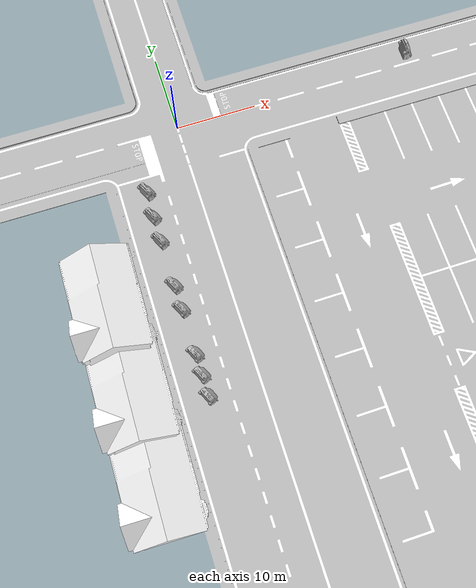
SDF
<sdf version="1.5">
 <world name="default">
  <scene><grid>false</grid></scene>
  <include><uri>model://sun</uri><pose>1.5 -30 100 0 0 0</pose></include>
  <include><uri>model://house_3</uri><name>house3_2</name><pose>-14 -20 0 0 0 1.55</pose></include>
  <include><uri>model://house_3</uri><name>house3_3</name><pose>-14 -30 0 0 0 1.55</pose></include>
  <include><uri>model://house_3</uri><name>house3_4</name><pose>-14 -40 0 0 0 1.55</pose></include>
  <include>
   <uri>model://opel</uri>
   <name>car1</name>
   <pose>30 1.5 0 0 0 -1.57</pose>
   <static>true</static>
  </include>
  <include>
   <uri>model://opel</uri>
   <name>car2</name>
   <pose>-6.5 -7.7 0 0 0 -1.14</pose>
   <static>true</static>
  </include>
  <include>
   <uri>model://opel</uri>
   <name>car3</name>
   <pose>-6.7 -11 0 0 0 -1.14</pose>
   <static>true</static>
  </include>
  <include>
   <uri>model://opel</uri>
   <name>car4</name>
   <pose>-6.7 -14.2 0 0 0 -1.14</pose>
   <static>true</static>
  </include>
  <include>
   <uri>model://opel</uri>
   <name>car5</name>
   <pose>-6.7 -20 0 0 0 -1.14</pose>
   <static>true</static>
  </include>
  <include>
   <uri>model://opel</uri>
   <name>car6</name>
   <pose>-6.7 -23 0 0 0 -1.14</pose>
   <static>true</static>
  </include>
  <include>
   <uri>model://opel</uri>
   <name>car7</name>
   <pose>-6.7 -28.5 0 0 0 -1.14</pose>
   <static>true</static>
  </include>
  <include>
   <uri>model://opel</uri>
   <name>car8</name>
   <pose>-6.7 -31 0 0 0 -1.14</pose>
   <static>true</static>
  </include>
  <include>
   <uri>model://opel</uri>
   <name>car9</name>
   <pose>-6.7 -33.5 0 0 0 -1.14</pose>
   <static>true</static>
  </include>
  <include><uri>model://parking</uri><pose>0 0 0 0 0 -1.5708</pose></include>
 </world>
</sdf>

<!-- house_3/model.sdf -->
<sdf version="1.5">
  <model name="House 3">
    <static>true</static>
    <link name="link">
      <collision name="collision">
        <geometry>
          <mesh>
            <uri>model://house_3/meshes/house_3.dae</uri>
            <scale>1.5 1.5 1.5</scale>
          </mesh>
        </geometry>
      </collision>
      <visual name="visual">
        <geometry>
          <mesh>
            <uri>model://house_3/meshes/house_3.dae</uri>
            <scale>1.5 1.5 1.5</scale>
          </mesh>
        </geometry>
        <material>
          <diffuse>1.0 1.0 1.0 1.0</diffuse>
          <specular>0.0 0.0 0.0 1.0</specular>
          <pbr>
            <metal>
              <albedo_map>model://house_3/materials/textures/house_3.png</albedo_map>
            </metal>
          </pbr>
        </material>
      </visual>
    </link>
  </model>
</sdf>

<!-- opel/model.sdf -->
<sdf version="1.4">
<model name="opel">
  <pose>0 0 0.5 0 0 0</pose>
  <static>true</static>

  <link name="opel">
      <gravity>0</gravity> <!-- No hace falta gravedad para estático -->
      <collision name="collision">
          <geometry>
              <mesh>
                  <uri>model://opel/meshes/model.obj</uri>
              </mesh>
          </geometry>
      </collision>
      <visual name="visual">
          <geometry>
              <mesh>
                  <uri>model://opel/meshes/model.obj</uri>
              </mesh>
          </geometry>
      </visual>
  </link>

  <!-- Plugins de control o sensores no necesarios para estático -->

  <!-- Cámaras -->

</model>
</sdf>

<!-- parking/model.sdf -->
<sdf version="1.5">
  <model name="stop">
    <static>true</static>
    <link name="link">
      <collision name="collision">
        <geometry>
          <plane>
            <normal>0 0 1</normal>
            <size>100 100</size>
          </plane>
        </geometry>
      </collision>
      <visual name="visual">
        <geometry>
          <mesh>
	          <uri>model://parking/meshes/parking.dae</uri>
            <scale>1.3 1.3 1.3</scale>
          </mesh>
        </geometry>
      </visual>
    </link>
  </model>
</sdf>
